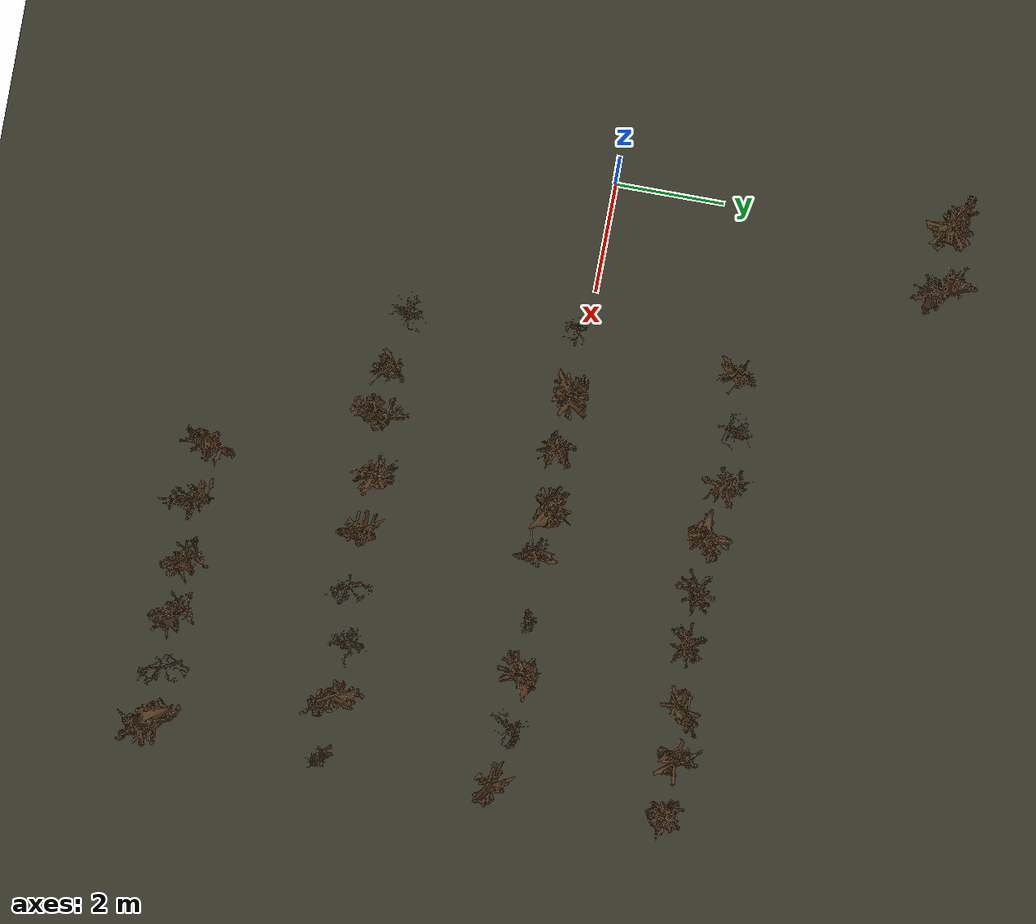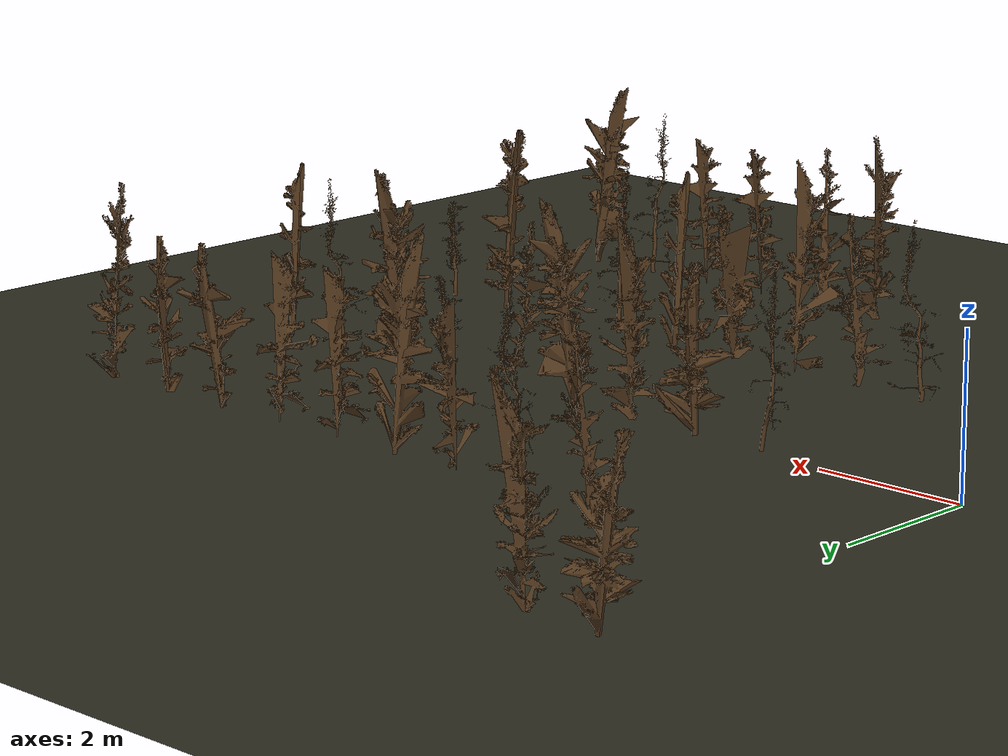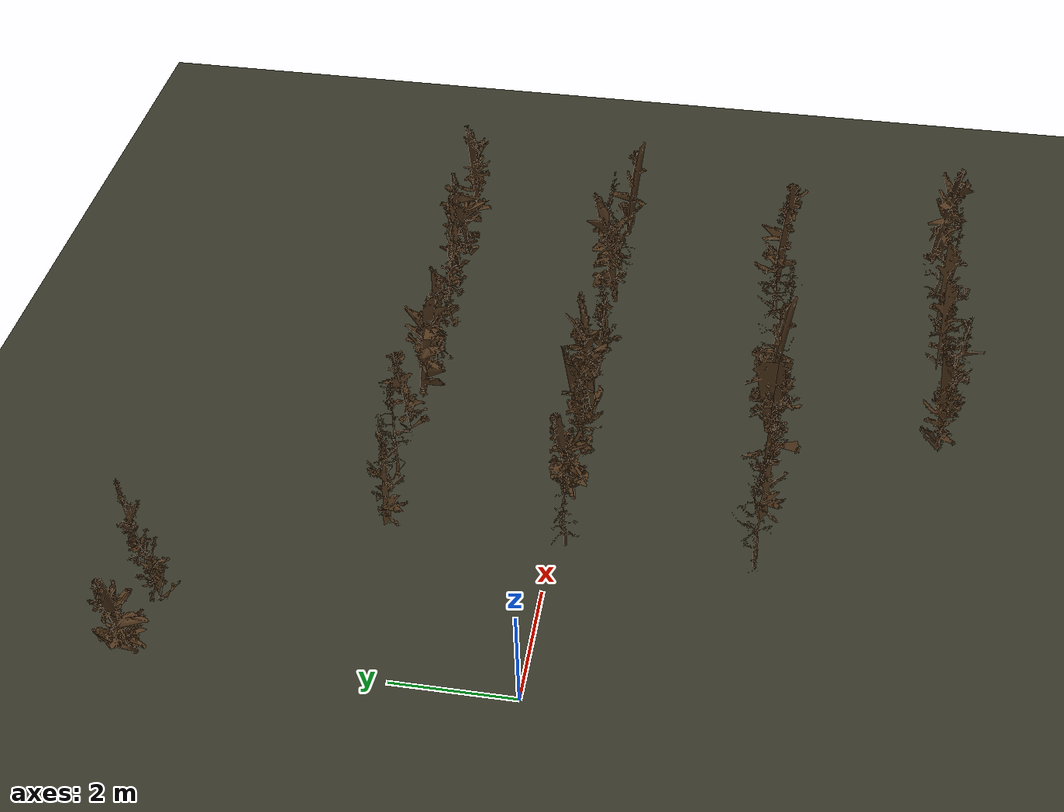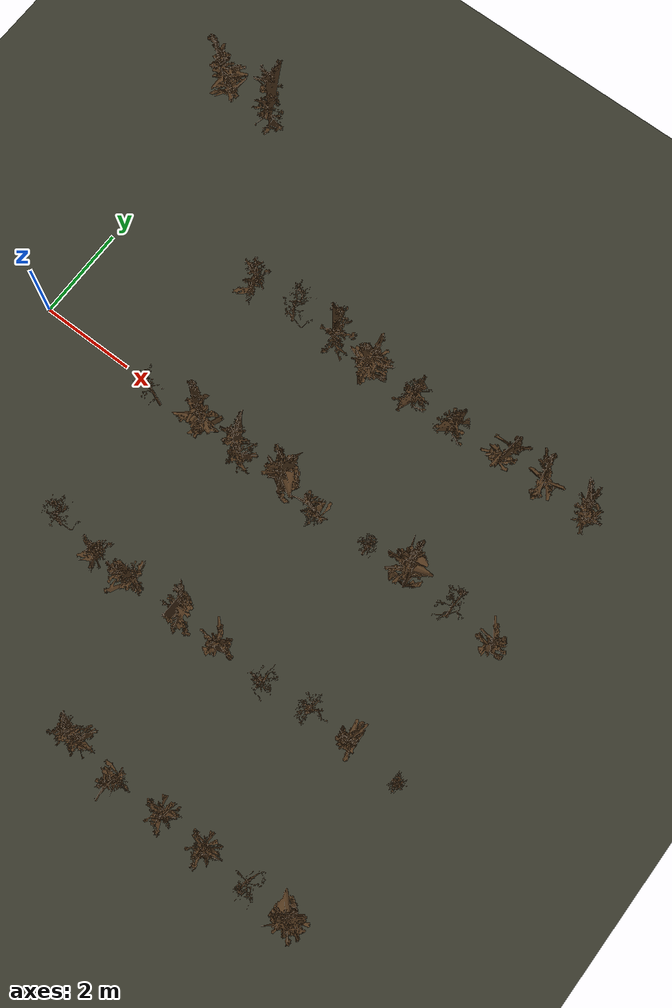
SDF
<sdf version="1.9">
 <world name="orchard_dormant_world">
  <model name="ground_plane">
   <static>true</static>
   <link name="link">
    <collision name="collision">
     <geometry><plane><normal>0 0 1</normal><size>500 500</size></plane></geometry>
    </collision>
    <visual name="visual">
     <geometry><plane><normal>0 0 1</normal><size>500 500</size></plane></geometry>
     <material><ambient>0.2 0.2 0.15 1</ambient><diffuse>0.2 0.2 0.15 1</diffuse></material>
    </visual>
   </link>
  </model>
  <model name="tree237">
   <static>true</static>
   <pose>1.000 5.900 -0.1 0 0 2.901</pose>
   <link name="link">
    <collision name="collision">
     <geometry>
      <mesh>
       <uri>file:///home/administrator/ros2/orchard_navigation_rl_ws/src/orchard_worlds/models/orchard_model/tree5_collision.stl</uri>
      </mesh>
     </geometry>
    </collision>
    <visual name="visual">
     <geometry>
      <mesh>
       <uri>file:///home/administrator/ros2/orchard_navigation_rl_ws/src/orchard_worlds/models/orchard_model/tree5.stl</uri>
      </mesh>
     </geometry>
     <material><ambient>0.3 0.2 0.1 1</ambient><diffuse>0.3 0.2 0.1 1</diffuse></material>
    </visual>
   </link>
  </model>
  <model name="tree238">
   <static>true</static>
   <pose>0.000 5.900 -0.1 0 0 5.736</pose>
   <link name="link">
    <collision name="collision">
     <geometry>
      <mesh>
       <uri>file:///home/administrator/ros2/orchard_navigation_rl_ws/src/orchard_worlds/models/orchard_model/tree12_collision.stl</uri>
      </mesh>
     </geometry>
    </collision>
    <visual name="visual">
     <geometry>
      <mesh>
       <uri>file:///home/administrator/ros2/orchard_navigation_rl_ws/src/orchard_worlds/models/orchard_model/tree12.stl</uri>
      </mesh>
     </geometry>
     <material><ambient>0.3 0.2 0.1 1</ambient><diffuse>0.3 0.2 0.1 1</diffuse></material>
    </visual>
   </link>
  </model>
  <model name="tree258">
   <static>true</static>
   <pose>11.000 2.800 -0.1 0 0 4.936</pose>
   <link name="link">
    <collision name="collision">
     <geometry>
      <mesh>
       <uri>file:///home/administrator/ros2/orchard_navigation_rl_ws/src/orchard_worlds/models/orchard_model/tree5_collision.stl</uri>
      </mesh>
     </geometry>
    </collision>
    <visual name="visual">
     <geometry>
      <mesh>
       <uri>file:///home/administrator/ros2/orchard_navigation_rl_ws/src/orchard_worlds/models/orchard_model/tree5.stl</uri>
      </mesh>
     </geometry>
     <material><ambient>0.3 0.2 0.1 1</ambient><diffuse>0.3 0.2 0.1 1</diffuse></material>
    </visual>
   </link>
  </model>
  <model name="tree259">
   <static>true</static>
   <pose>10.000 2.800 -0.1 0 0 4.360</pose>
   <link name="link">
    <collision name="collision">
     <geometry>
      <mesh>
       <uri>file:///home/administrator/ros2/orchard_navigation_rl_ws/src/orchard_worlds/models/orchard_model/tree8_collision.stl</uri>
      </mesh>
     </geometry>
    </collision>
    <visual name="visual">
     <geometry>
      <mesh>
       <uri>file:///home/administrator/ros2/orchard_navigation_rl_ws/src/orchard_worlds/models/orchard_model/tree8.stl</uri>
      </mesh>
     </geometry>
     <material><ambient>0.3 0.2 0.1 1</ambient><diffuse>0.3 0.2 0.1 1</diffuse></material>
    </visual>
   </link>
  </model>
  <model name="tree260">
   <static>true</static>
   <pose>9.000 2.800 -0.1 0 0 2.682</pose>
   <link name="link">
    <collision name="collision">
     <geometry>
      <mesh>
       <uri>file:///home/administrator/ros2/orchard_navigation_rl_ws/src/orchard_worlds/models/orchard_model/tree8_collision.stl</uri>
      </mesh>
     </geometry>
    </collision>
    <visual name="visual">
     <geometry>
      <mesh>
       <uri>file:///home/administrator/ros2/orchard_navigation_rl_ws/src/orchard_worlds/models/orchard_model/tree8.stl</uri>
      </mesh>
     </geometry>
     <material><ambient>0.3 0.2 0.1 1</ambient><diffuse>0.3 0.2 0.1 1</diffuse></material>
    </visual>
   </link>
  </model>
  <model name="tree261">
   <static>true</static>
   <pose>8.000 2.800 -0.1 0 0 0.564</pose>
   <link name="link">
    <collision name="collision">
     <geometry>
      <mesh>
       <uri>file:///home/administrator/ros2/orchard_navigation_rl_ws/src/orchard_worlds/models/orchard_model/tree1_collision.stl</uri>
      </mesh>
     </geometry>
    </collision>
    <visual name="visual">
     <geometry>
      <mesh>
       <uri>file:///home/administrator/ros2/orchard_navigation_rl_ws/src/orchard_worlds/models/orchard_model/tree1.stl</uri>
      </mesh>
     </geometry>
     <material><ambient>0.3 0.2 0.1 1</ambient><diffuse>0.3 0.2 0.1 1</diffuse></material>
    </visual>
   </link>
  </model>
  <model name="tree262">
   <static>true</static>
   <pose>7.000 2.800 -0.1 0 0 1.096</pose>
   <link name="link">
    <collision name="collision">
     <geometry>
      <mesh>
       <uri>file:///home/administrator/ros2/orchard_navigation_rl_ws/src/orchard_worlds/models/orchard_model/tree1_collision.stl</uri>
      </mesh>
     </geometry>
    </collision>
    <visual name="visual">
     <geometry>
      <mesh>
       <uri>file:///home/administrator/ros2/orchard_navigation_rl_ws/src/orchard_worlds/models/orchard_model/tree1.stl</uri>
      </mesh>
     </geometry>
     <material><ambient>0.3 0.2 0.1 1</ambient><diffuse>0.3 0.2 0.1 1</diffuse></material>
    </visual>
   </link>
  </model>
  <model name="tree263">
   <static>true</static>
   <pose>6.000 2.800 -0.1 0 0 0.961</pose>
   <link name="link">
    <collision name="collision">
     <geometry>
      <mesh>
       <uri>file:///home/administrator/ros2/orchard_navigation_rl_ws/src/orchard_worlds/models/orchard_model/tree7_collision.stl</uri>
      </mesh>
     </geometry>
    </collision>
    <visual name="visual">
     <geometry>
      <mesh>
       <uri>file:///home/administrator/ros2/orchard_navigation_rl_ws/src/orchard_worlds/models/orchard_model/tree7.stl</uri>
      </mesh>
     </geometry>
     <material><ambient>0.3 0.2 0.1 1</ambient><diffuse>0.3 0.2 0.1 1</diffuse></material>
    </visual>
   </link>
  </model>
  <model name="tree264">
   <static>true</static>
   <pose>5.000 2.800 -0.1 0 0 3.178</pose>
   <link name="link">
    <collision name="collision">
     <geometry>
      <mesh>
       <uri>file:///home/administrator/ros2/orchard_navigation_rl_ws/src/orchard_worlds/models/orchard_model/tree1_collision.stl</uri>
      </mesh>
     </geometry>
    </collision>
    <visual name="visual">
     <geometry>
      <mesh>
       <uri>file:///home/administrator/ros2/orchard_navigation_rl_ws/src/orchard_worlds/models/orchard_model/tree1.stl</uri>
      </mesh>
     </geometry>
     <material><ambient>0.3 0.2 0.1 1</ambient><diffuse>0.3 0.2 0.1 1</diffuse></material>
    </visual>
   </link>
  </model>
  <model name="tree265">
   <static>true</static>
   <pose>4.000 2.800 -0.1 0 0 2.172</pose>
   <link name="link">
    <collision name="collision">
     <geometry>
      <mesh>
       <uri>file:///home/administrator/ros2/orchard_navigation_rl_ws/src/orchard_worlds/models/orchard_model/tree9_collision.stl</uri>
      </mesh>
     </geometry>
    </collision>
    <visual name="visual">
     <geometry>
      <mesh>
       <uri>file:///home/administrator/ros2/orchard_navigation_rl_ws/src/orchard_worlds/models/orchard_model/tree9.stl</uri>
      </mesh>
     </geometry>
     <material><ambient>0.3 0.2 0.1 1</ambient><diffuse>0.3 0.2 0.1 1</diffuse></material>
    </visual>
   </link>
  </model>
  <model name="tree266">
   <static>true</static>
   <pose>3.000 2.800 -0.1 0 0 1.993</pose>
   <link name="link">
    <collision name="collision">
     <geometry>
      <mesh>
       <uri>file:///home/administrator/ros2/orchard_navigation_rl_ws/src/orchard_worlds/models/orchard_model/tree2_collision.stl</uri>
      </mesh>
     </geometry>
    </collision>
    <visual name="visual">
     <geometry>
      <mesh>
       <uri>file:///home/administrator/ros2/orchard_navigation_rl_ws/src/orchard_worlds/models/orchard_model/tree2.stl</uri>
      </mesh>
     </geometry>
     <material><ambient>0.3 0.2 0.1 1</ambient><diffuse>0.3 0.2 0.1 1</diffuse></material>
    </visual>
   </link>
  </model>
  <model name="tree286">
   <static>true</static>
   <pose>11.000 -0.200 -0.1 0 0 0.941</pose>
   <link name="link">
    <collision name="collision">
     <geometry>
      <mesh>
       <uri>file:///home/administrator/ros2/orchard_navigation_rl_ws/src/orchard_worlds/models/orchard_model/tree13_collision.stl</uri>
      </mesh>
     </geometry>
    </collision>
    <visual name="visual">
     <geometry>
      <mesh>
       <uri>file:///home/administrator/ros2/orchard_navigation_rl_ws/src/orchard_worlds/models/orchard_model/tree13.stl</uri>
      </mesh>
     </geometry>
     <material><ambient>0.3 0.2 0.1 1</ambient><diffuse>0.3 0.2 0.1 1</diffuse></material>
    </visual>
   </link>
  </model>
  <model name="tree287">
   <static>true</static>
   <pose>10.000 -0.200 -0.1 0 0 3.438</pose>
   <link name="link">
    <collision name="collision">
     <geometry>
      <mesh>
       <uri>file:///home/administrator/ros2/orchard_navigation_rl_ws/src/orchard_worlds/models/orchard_model/tree9_collision.stl</uri>
      </mesh>
     </geometry>
    </collision>
    <visual name="visual">
     <geometry>
      <mesh>
       <uri>file:///home/administrator/ros2/orchard_navigation_rl_ws/src/orchard_worlds/models/orchard_model/tree9.stl</uri>
      </mesh>
     </geometry>
     <material><ambient>0.3 0.2 0.1 1</ambient><diffuse>0.3 0.2 0.1 1</diffuse></material>
    </visual>
   </link>
  </model>
  <model name="tree288">
   <static>true</static>
   <pose>9.000 -0.200 -0.1 0 0 4.325</pose>
   <link name="link">
    <collision name="collision">
     <geometry>
      <mesh>
       <uri>file:///home/administrator/ros2/orchard_navigation_rl_ws/src/orchard_worlds/models/orchard_model/tree7_collision.stl</uri>
      </mesh>
     </geometry>
    </collision>
    <visual name="visual">
     <geometry>
      <mesh>
       <uri>file:///home/administrator/ros2/orchard_navigation_rl_ws/src/orchard_worlds/models/orchard_model/tree7.stl</uri>
      </mesh>
     </geometry>
     <material><ambient>0.3 0.2 0.1 1</ambient><diffuse>0.3 0.2 0.1 1</diffuse></material>
    </visual>
   </link>
  </model>
  <model name="tree289">
   <static>true</static>
   <pose>8.000 -0.200 -0.1 0 0 3.586</pose>
   <link name="link">
    <collision name="collision">
     <geometry>
      <mesh>
       <uri>file:///home/administrator/ros2/orchard_navigation_rl_ws/src/orchard_worlds/models/orchard_model/tree4_collision.stl</uri>
      </mesh>
     </geometry>
    </collision>
    <visual name="visual">
     <geometry>
      <mesh>
       <uri>file:///home/administrator/ros2/orchard_navigation_rl_ws/src/orchard_worlds/models/orchard_model/tree4.stl</uri>
      </mesh>
     </geometry>
     <material><ambient>0.3 0.2 0.1 1</ambient><diffuse>0.3 0.2 0.1 1</diffuse></material>
    </visual>
   </link>
  </model>
  <model name="tree290">
   <static>true</static>
   <pose>7.000 -0.200 -0.1 0 0 5.834</pose>
   <link name="link">
    <collision name="collision">
     <geometry>
      <mesh>
       <uri>file:///home/administrator/ros2/orchard_navigation_rl_ws/src/orchard_worlds/models/orchard_model/tree2_collision.stl</uri>
      </mesh>
     </geometry>
    </collision>
    <visual name="visual">
     <geometry>
      <mesh>
       <uri>file:///home/administrator/ros2/orchard_navigation_rl_ws/src/orchard_worlds/models/orchard_model/tree2.stl</uri>
      </mesh>
     </geometry>
     <material><ambient>0.3 0.2 0.1 1</ambient><diffuse>0.3 0.2 0.1 1</diffuse></material>
    </visual>
   </link>
  </model>
  <model name="tree291">
   <static>true</static>
   <pose>6.000 -0.200 -0.1 0 0 3.405</pose>
   <link name="link">
    <collision name="collision">
     <geometry>
      <mesh>
       <uri>file:///home/administrator/ros2/orchard_navigation_rl_ws/src/orchard_worlds/models/orchard_model/tree7_collision.stl</uri>
      </mesh>
     </geometry>
    </collision>
    <visual name="visual">
     <geometry>
      <mesh>
       <uri>file:///home/administrator/ros2/orchard_navigation_rl_ws/src/orchard_worlds/models/orchard_model/tree7.stl</uri>
      </mesh>
     </geometry>
     <material><ambient>0.3 0.2 0.1 1</ambient><diffuse>0.3 0.2 0.1 1</diffuse></material>
    </visual>
   </link>
  </model>
  <model name="tree292">
   <static>true</static>
   <pose>5.000 -0.200 -0.1 0 0 3.706</pose>
   <link name="link">
    <collision name="collision">
     <geometry>
      <mesh>
       <uri>file:///home/administrator/ros2/orchard_navigation_rl_ws/src/orchard_worlds/models/orchard_model/tree5_collision.stl</uri>
      </mesh>
     </geometry>
    </collision>
    <visual name="visual">
     <geometry>
      <mesh>
       <uri>file:///home/administrator/ros2/orchard_navigation_rl_ws/src/orchard_worlds/models/orchard_model/tree5.stl</uri>
      </mesh>
     </geometry>
     <material><ambient>0.3 0.2 0.1 1</ambient><diffuse>0.3 0.2 0.1 1</diffuse></material>
    </visual>
   </link>
  </model>
  <model name="tree293">
   <static>true</static>
   <pose>4.000 -0.200 -0.1 0 0 4.806</pose>
   <link name="link">
    <collision name="collision">
     <geometry>
      <mesh>
       <uri>file:///home/administrator/ros2/orchard_navigation_rl_ws/src/orchard_worlds/models/orchard_model/tree12_collision.stl</uri>
      </mesh>
     </geometry>
    </collision>
    <visual name="visual">
     <geometry>
      <mesh>
       <uri>file:///home/administrator/ros2/orchard_navigation_rl_ws/src/orchard_worlds/models/orchard_model/tree12.stl</uri>
      </mesh>
     </geometry>
     <material><ambient>0.3 0.2 0.1 1</ambient><diffuse>0.3 0.2 0.1 1</diffuse></material>
    </visual>
   </link>
  </model>
  <model name="tree294">
   <static>true</static>
   <pose>3.000 -0.200 -0.1 0 0 0.636</pose>
   <link name="link">
    <collision name="collision">
     <geometry>
      <mesh>
       <uri>file:///home/administrator/ros2/orchard_navigation_rl_ws/src/orchard_worlds/models/orchard_model/tree16_collision.stl</uri>
      </mesh>
     </geometry>
    </collision>
    <visual name="visual">
     <geometry>
      <mesh>
       <uri>file:///home/administrator/ros2/orchard_navigation_rl_ws/src/orchard_worlds/models/orchard_model/tree16.stl</uri>
      </mesh>
     </geometry>
     <material><ambient>0.3 0.2 0.1 1</ambient><diffuse>0.3 0.2 0.1 1</diffuse></material>
    </visual>
   </link>
  </model>
  <model name="tree314">
   <static>true</static>
   <pose>11.000 -3.250 -0.1 0 0 2.129</pose>
   <link name="link">
    <collision name="collision">
     <geometry>
      <mesh>
       <uri>file:///home/administrator/ros2/orchard_navigation_rl_ws/src/orchard_worlds/models/orchard_model/tree4_collision.stl</uri>
      </mesh>
     </geometry>
    </collision>
    <visual name="visual">
     <geometry>
      <mesh>
       <uri>file:///home/administrator/ros2/orchard_navigation_rl_ws/src/orchard_worlds/models/orchard_model/tree4.stl</uri>
      </mesh>
     </geometry>
     <material><ambient>0.3 0.2 0.1 1</ambient><diffuse>0.3 0.2 0.1 1</diffuse></material>
    </visual>
   </link>
  </model>
  <model name="tree315">
   <static>true</static>
   <pose>10.000 -3.250 -0.1 0 0 0.141</pose>
   <link name="link">
    <collision name="collision">
     <geometry>
      <mesh>
       <uri>file:///home/administrator/ros2/orchard_navigation_rl_ws/src/orchard_worlds/models/orchard_model/tree6_collision.stl</uri>
      </mesh>
     </geometry>
    </collision>
    <visual name="visual">
     <geometry>
      <mesh>
       <uri>file:///home/administrator/ros2/orchard_navigation_rl_ws/src/orchard_worlds/models/orchard_model/tree6.stl</uri>
      </mesh>
     </geometry>
     <material><ambient>0.3 0.2 0.1 1</ambient><diffuse>0.3 0.2 0.1 1</diffuse></material>
    </visual>
   </link>
  </model>
  <model name="tree316">
   <static>true</static>
   <pose>9.000 -3.250 -0.1 0 0 5.365</pose>
   <link name="link">
    <collision name="collision">
     <geometry>
      <mesh>
       <uri>file:///home/administrator/ros2/orchard_navigation_rl_ws/src/orchard_worlds/models/orchard_model/tree14_collision.stl</uri>
      </mesh>
     </geometry>
    </collision>
    <visual name="visual">
     <geometry>
      <mesh>
       <uri>file:///home/administrator/ros2/orchard_navigation_rl_ws/src/orchard_worlds/models/orchard_model/tree14.stl</uri>
      </mesh>
     </geometry>
     <material><ambient>0.3 0.2 0.1 1</ambient><diffuse>0.3 0.2 0.1 1</diffuse></material>
    </visual>
   </link>
  </model>
  <model name="tree317">
   <static>true</static>
   <pose>8.000 -3.250 -0.1 0 0 0.757</pose>
   <link name="link">
    <collision name="collision">
     <geometry>
      <mesh>
       <uri>file:///home/administrator/ros2/orchard_navigation_rl_ws/src/orchard_worlds/models/orchard_model/tree9_collision.stl</uri>
      </mesh>
     </geometry>
    </collision>
    <visual name="visual">
     <geometry>
      <mesh>
       <uri>file:///home/administrator/ros2/orchard_navigation_rl_ws/src/orchard_worlds/models/orchard_model/tree9.stl</uri>
      </mesh>
     </geometry>
     <material><ambient>0.3 0.2 0.1 1</ambient><diffuse>0.3 0.2 0.1 1</diffuse></material>
    </visual>
   </link>
  </model>
  <model name="tree318">
   <static>true</static>
   <pose>7.000 -3.250 -0.1 0 0 0.931</pose>
   <link name="link">
    <collision name="collision">
     <geometry>
      <mesh>
       <uri>file:///home/administrator/ros2/orchard_navigation_rl_ws/src/orchard_worlds/models/orchard_model/tree13_collision.stl</uri>
      </mesh>
     </geometry>
    </collision>
    <visual name="visual">
     <geometry>
      <mesh>
       <uri>file:///home/administrator/ros2/orchard_navigation_rl_ws/src/orchard_worlds/models/orchard_model/tree13.stl</uri>
      </mesh>
     </geometry>
     <material><ambient>0.3 0.2 0.1 1</ambient><diffuse>0.3 0.2 0.1 1</diffuse></material>
    </visual>
   </link>
  </model>
  <model name="tree319">
   <static>true</static>
   <pose>6.000 -3.250 -0.1 0 0 4.235</pose>
   <link name="link">
    <collision name="collision">
     <geometry>
      <mesh>
       <uri>file:///home/administrator/ros2/orchard_navigation_rl_ws/src/orchard_worlds/models/orchard_model/tree11_collision.stl</uri>
      </mesh>
     </geometry>
    </collision>
    <visual name="visual">
     <geometry>
      <mesh>
       <uri>file:///home/administrator/ros2/orchard_navigation_rl_ws/src/orchard_worlds/models/orchard_model/tree11.stl</uri>
      </mesh>
     </geometry>
     <material><ambient>0.3 0.2 0.1 1</ambient><diffuse>0.3 0.2 0.1 1</diffuse></material>
    </visual>
   </link>
  </model>
  <model name="tree320">
   <static>true</static>
   <pose>5.000 -3.250 -0.1 0 0 0.253</pose>
   <link name="link">
    <collision name="collision">
     <geometry>
      <mesh>
       <uri>file:///home/administrator/ros2/orchard_navigation_rl_ws/src/orchard_worlds/models/orchard_model/tree3_collision.stl</uri>
      </mesh>
     </geometry>
    </collision>
    <visual name="visual">
     <geometry>
      <mesh>
       <uri>file:///home/administrator/ros2/orchard_navigation_rl_ws/src/orchard_worlds/models/orchard_model/tree3.stl</uri>
      </mesh>
     </geometry>
     <material><ambient>0.3 0.2 0.1 1</ambient><diffuse>0.3 0.2 0.1 1</diffuse></material>
    </visual>
   </link>
  </model>
  <model name="tree321">
   <static>true</static>
   <pose>4.000 -3.250 -0.1 0 0 1.886</pose>
   <link name="link">
    <collision name="collision">
     <geometry>
      <mesh>
       <uri>file:///home/administrator/ros2/orchard_navigation_rl_ws/src/orchard_worlds/models/orchard_model/tree2_collision.stl</uri>
      </mesh>
     </geometry>
    </collision>
    <visual name="visual">
     <geometry>
      <mesh>
       <uri>file:///home/administrator/ros2/orchard_navigation_rl_ws/src/orchard_worlds/models/orchard_model/tree2.stl</uri>
      </mesh>
     </geometry>
     <material><ambient>0.3 0.2 0.1 1</ambient><diffuse>0.3 0.2 0.1 1</diffuse></material>
    </visual>
   </link>
  </model>
  <model name="tree322">
   <static>true</static>
   <pose>3.000 -3.250 -0.1 0 0 2.456</pose>
   <link name="link">
    <collision name="collision">
     <geometry>
      <mesh>
       <uri>file:///home/administrator/ros2/orchard_navigation_rl_ws/src/orchard_worlds/models/orchard_model/tree9_collision.stl</uri>
      </mesh>
     </geometry>
    </collision>
    <visual name="visual">
     <geometry>
      <mesh>
       <uri>file:///home/administrator/ros2/orchard_navigation_rl_ws/src/orchard_worlds/models/orchard_model/tree9.stl</uri>
      </mesh>
     </geometry>
     <material><ambient>0.3 0.2 0.1 1</ambient><diffuse>0.3 0.2 0.1 1</diffuse></material>
    </visual>
   </link>
  </model>
  <model name="tree342">
   <static>true</static>
   <pose>11.000 -6.200 -0.1 0 0 0.035</pose>
   <link name="link">
    <collision name="collision">
     <geometry>
      <mesh>
       <uri>file:///home/administrator/ros2/orchard_navigation_rl_ws/src/orchard_worlds/models/orchard_model/tree7_collision.stl</uri>
      </mesh>
     </geometry>
    </collision>
    <visual name="visual">
     <geometry>
      <mesh>
       <uri>file:///home/administrator/ros2/orchard_navigation_rl_ws/src/orchard_worlds/models/orchard_model/tree7.stl</uri>
      </mesh>
     </geometry>
     <material><ambient>0.3 0.2 0.1 1</ambient><diffuse>0.3 0.2 0.1 1</diffuse></material>
    </visual>
   </link>
  </model>
  <model name="tree343">
   <static>true</static>
   <pose>10.000 -6.200 -0.1 0 0 0.414</pose>
   <link name="link">
    <collision name="collision">
     <geometry>
      <mesh>
       <uri>file:///home/administrator/ros2/orchard_navigation_rl_ws/src/orchard_worlds/models/orchard_model/tree9_collision.stl</uri>
      </mesh>
     </geometry>
    </collision>
    <visual name="visual">
     <geometry>
      <mesh>
       <uri>file:///home/administrator/ros2/orchard_navigation_rl_ws/src/orchard_worlds/models/orchard_model/tree9.stl</uri>
      </mesh>
     </geometry>
     <material><ambient>0.3 0.2 0.1 1</ambient><diffuse>0.3 0.2 0.1 1</diffuse></material>
    </visual>
   </link>
  </model>
  <model name="tree344">
   <static>true</static>
   <pose>9.000 -6.200 -0.1 0 0 1.429</pose>
   <link name="link">
    <collision name="collision">
     <geometry>
      <mesh>
       <uri>file:///home/administrator/ros2/orchard_navigation_rl_ws/src/orchard_worlds/models/orchard_model/tree1_collision.stl</uri>
      </mesh>
     </geometry>
    </collision>
    <visual name="visual">
     <geometry>
      <mesh>
       <uri>file:///home/administrator/ros2/orchard_navigation_rl_ws/src/orchard_worlds/models/orchard_model/tree1.stl</uri>
      </mesh>
     </geometry>
     <material><ambient>0.3 0.2 0.1 1</ambient><diffuse>0.3 0.2 0.1 1</diffuse></material>
    </visual>
   </link>
  </model>
  <model name="tree345">
   <static>true</static>
   <pose>8.000 -6.200 -0.1 0 0 1.743</pose>
   <link name="link">
    <collision name="collision">
     <geometry>
      <mesh>
       <uri>file:///home/administrator/ros2/orchard_navigation_rl_ws/src/orchard_worlds/models/orchard_model/tree1_collision.stl</uri>
      </mesh>
     </geometry>
    </collision>
    <visual name="visual">
     <geometry>
      <mesh>
       <uri>file:///home/administrator/ros2/orchard_navigation_rl_ws/src/orchard_worlds/models/orchard_model/tree1.stl</uri>
      </mesh>
     </geometry>
     <material><ambient>0.3 0.2 0.1 1</ambient><diffuse>0.3 0.2 0.1 1</diffuse></material>
    </visual>
   </link>
  </model>
  <model name="tree346">
   <static>true</static>
   <pose>7.000 -6.200 -0.1 0 0 0.974</pose>
   <link name="link">
    <collision name="collision">
     <geometry>
      <mesh>
       <uri>file:///home/administrator/ros2/orchard_navigation_rl_ws/src/orchard_worlds/models/orchard_model/tree2_collision.stl</uri>
      </mesh>
     </geometry>
    </collision>
    <visual name="visual">
     <geometry>
      <mesh>
       <uri>file:///home/administrator/ros2/orchard_navigation_rl_ws/src/orchard_worlds/models/orchard_model/tree2.stl</uri>
      </mesh>
     </geometry>
     <material><ambient>0.3 0.2 0.1 1</ambient><diffuse>0.3 0.2 0.1 1</diffuse></material>
    </visual>
   </link>
  </model>
  <model name="tree347">
   <static>true</static>
   <pose>6.000 -6.200 -0.1 0 0 4.088</pose>
   <link name="link">
    <collision name="collision">
     <geometry>
      <mesh>
       <uri>file:///home/administrator/ros2/orchard_navigation_rl_ws/src/orchard_worlds/models/orchard_model/tree5_collision.stl</uri>
      </mesh>
     </geometry>
    </collision>
    <visual name="visual">
     <geometry>
      <mesh>
       <uri>file:///home/administrator/ros2/orchard_navigation_rl_ws/src/orchard_worlds/models/orchard_model/tree5.stl</uri>
      </mesh>
     </geometry>
     <material><ambient>0.3 0.2 0.1 1</ambient><diffuse>0.3 0.2 0.1 1</diffuse></material>
    </visual>
   </link>
  </model>
 </world>
</sdf>
